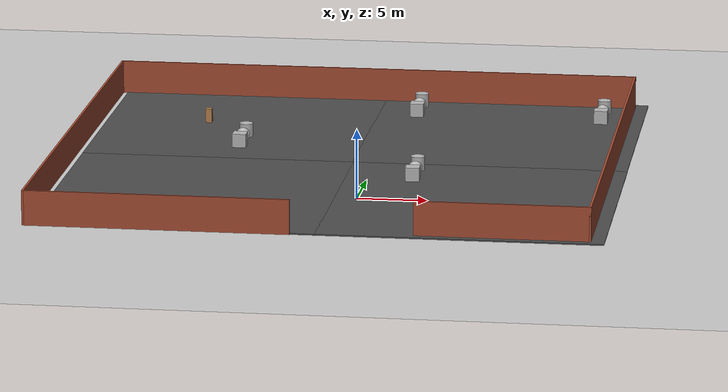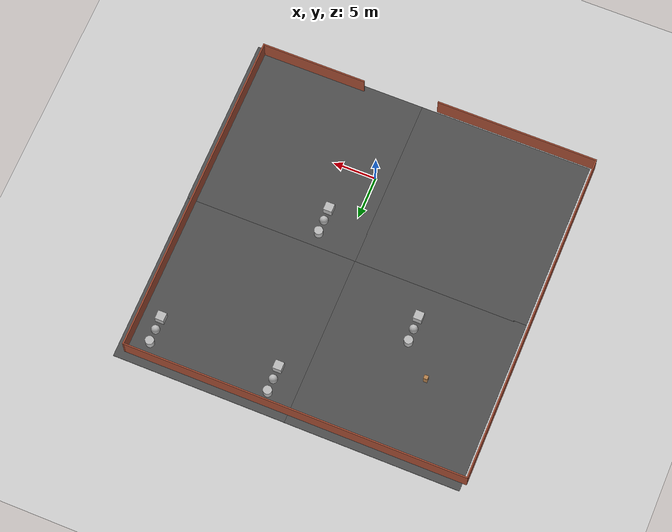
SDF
<sdf version="1.6">
 <world name="default">
  <light name="sun" type="directional">
   <pose>0 0 10 0 -0 0</pose>
   <diffuse>0.8 0.8 0.8 1</diffuse>
   <specular>0.1 0.1 0.1 1</specular>
   <attenuation>
    <range>1000</range>
    <constant>0.9</constant>
    <linear>0.01</linear>
    <quadratic>0.001</quadratic>
   </attenuation>
   <direction>-0.5 0.5 -1</direction>
  </light>
  <model name="ground_plane">
   <static>1</static>
   <link name="link">
    <collision name="collision">
     <geometry><plane><normal>0 0 1</normal><size>100 100</size></plane></geometry>
     <surface><friction><ode><mu>100</mu><mu2>50</mu2></ode></friction></surface>
    </collision>
    <visual name="visual">
     <cast_shadows>0</cast_shadows>
     <geometry><plane><normal>0 0 1</normal><size>100 100</size></plane></geometry>
     <material>
      <script><uri>file://media/materials/scripts/gazebo.material</uri><name>Gazebo/Grey</name></script>
     </material>
    </visual>
   </link>
  </model>
  <gravity>0 0 -9.8</gravity>
  <magnetic_field>6e-06 2.3e-05 -4.2e-05</magnetic_field>
  <atmosphere type="adiabatic"/>
  <physics name="default_physics" default="0" type="ode">
   <max_step_size>0.001</max_step_size>
   <real_time_factor>1</real_time_factor>
   <real_time_update_rate>1000</real_time_update_rate>
  </physics>
  <scene><ambient>0.4 0.4 0.4 1</ambient><background>0.7 0.7 0.7 1</background><shadows>1</shadows></scene>
  <spherical_coordinates>
   <surface_model>EARTH_WGS84</surface_model>
   <latitude_deg>0</latitude_deg>
   <longitude_deg>0</longitude_deg>
   <elevation>0</elevation>
   <heading_deg>0</heading_deg>
  </spherical_coordinates>
  <model name="asphalt_plane">
   <static>1</static>
   <link name="link">
    <collision name="collision"><geometry><box><size>20 20 0.1</size></box></geometry></collision>
    <visual name="visual">
     <cast_shadows>0</cast_shadows>
     <geometry><box><size>20 20 0.1</size></box></geometry>
     <material>
      <script>
       <uri>model://asphalt_plane/materials/scripts</uri>
       <uri>model://asphalt_plane/materials/textures</uri>
       <name>vrc/asphalt</name>
      </script>
     </material>
    </visual>
   </link>
   <pose>8.35936 -0.042258 0 0 -0 0</pose>
  </model>
  <model name="asphalt_plane_0">
   <static>1</static>
   <link name="link">
    <collision name="collision"><geometry><box><size>20 20 0.1</size></box></geometry></collision>
    <visual name="visual">
     <cast_shadows>0</cast_shadows>
     <geometry><box><size>20 20 0.1</size></box></geometry>
     <material>
      <script>
       <uri>model://asphalt_plane/materials/scripts</uri>
       <uri>model://asphalt_plane/materials/textures</uri>
       <name>vrc/asphalt</name>
      </script>
     </material>
    </visual>
   </link>
   <pose>-11.5951 -0.039077 0 0 -0 0</pose>
  </model>
  <model name="asphalt_plane_1">
   <static>1</static>
   <link name="link">
    <collision name="collision"><geometry><box><size>20 20 0.1</size></box></geometry></collision>
    <visual name="visual">
     <cast_shadows>0</cast_shadows>
     <geometry><box><size>20 20 0.1</size></box></geometry>
     <material>
      <script>
       <uri>model://asphalt_plane/materials/scripts</uri>
       <uri>model://asphalt_plane/materials/textures</uri>
       <name>vrc/asphalt</name>
      </script>
     </material>
    </visual>
   </link>
   <pose>-11.6039 19.8487 0 0 -0 0</pose>
  </model>
  <model name="asphalt_plane_1_clone">
   <static>1</static>
   <link name="link">
    <collision name="collision"><geometry><box><size>20 20 0.1</size></box></geometry></collision>
    <visual name="visual">
     <cast_shadows>0</cast_shadows>
     <geometry><box><size>20 20 0.1</size></box></geometry>
     <material>
      <script>
       <uri>model://asphalt_plane/materials/scripts</uri>
       <uri>model://asphalt_plane/materials/textures</uri>
       <name>vrc/asphalt</name>
      </script>
     </material>
    </visual>
   </link>
   <pose>8.33411 19.8392 0 0 -0 0</pose>
  </model>
  <model name="cabinet">
   <static>1</static>
   <link name="cabinet::cabinet_bottom_plate">
    <inertial>
     <pose>0 0 -1 0 -0 0</pose>
     <inertia><ixx>2.05</ixx><ixy>0</ixy><ixz>0</ixz><iyy>2.05</iyy><iyz>0</iyz><izz>2.05</izz></inertia>
     <mass>25</mass>
    </inertial>
    <collision name="cabinet_bottom_plate_geom">
     <pose>0 0 0.01 0 -0 0</pose>
     <geometry><box><size>0.45 0.45 0.02</size></box></geometry>
    </collision>
    <visual name="cabinet_bottom_plate_geom_visual">
     <pose>0 0 0.01 0 -0 0</pose>
     <geometry><box><size>0.45 0.45 0.02</size></box></geometry>
     <material>
      <script><uri>file://media/materials/scripts/gazebo.material</uri><name>Gazebo/Wood</name></script>
     </material>
    </visual>
    <collision name="cabinet_bottom_plate_geom_cabinet_back_plate">
     <pose>0.235 0 0.51 0 -0 0</pose>
     <geometry><box><size>0.02 0.45 1.02</size></box></geometry>
    </collision>
    <visual name="cabinet_bottom_plate_geom_cabinet_back_plate_visual">
     <pose>0.235 0 0.51 0 -0 0</pose>
     <geometry><box><size>0.02 0.45 1.02</size></box></geometry>
     <material>
      <script><uri>file://media/materials/scripts/gazebo.material</uri><name>Gazebo/Wood</name></script>
     </material>
    </visual>
    <collision name="cabinet_bottom_plate_geom_cabinet_left_plate">
     <pose>0 0.235 0.51 0 -0 0</pose>
     <geometry><box><size>0.45 0.02 1.02</size></box></geometry>
    </collision>
    <visual name="cabinet_bottom_plate_geom_cabinet_left_plate_visual">
     <pose>0 0.235 0.51 0 -0 0</pose>
     <geometry><box><size>0.45 0.02 1.02</size></box></geometry>
     <material>
      <script><uri>file://media/materials/scripts/gazebo.material</uri><name>Gazebo/Wood</name></script>
     </material>
    </visual>
    <collision name="cabinet_bottom_plate_geom_cabinet_middle_plate">
     <pose>0 0 0.51 0 -0 0</pose>
     <geometry><box><size>0.45 0.45 0.02</size></box></geometry>
    </collision>
    <visual name="cabinet_bottom_plate_geom_cabinet_middle_plate_visual">
     <pose>0 0 0.51 0 -0 0</pose>
     <geometry><box><size>0.45 0.45 0.02</size></box></geometry>
     <material>
      <script><uri>file://media/materials/scripts/gazebo.material</uri><name>Gazebo/Wood</name></script>
     </material>
    </visual>
    <collision name="cabinet_bottom_plate_geom_cabinet_right_plate">
     <pose>0 -0.235 0.51 0 -0 0</pose>
     <geometry><box><size>0.45 0.02 1.02</size></box></geometry>
    </collision>
    <visual name="cabinet_bottom_plate_geom_cabinet_right_plate_visual">
     <pose>0 -0.235 0.51 0 -0 0</pose>
     <geometry><box><size>0.45 0.02 1.02</size></box></geometry>
     <material>
      <script><uri>file://media/materials/scripts/gazebo.material</uri><name>Gazebo/Wood</name></script>
     </material>
    </visual>
    <collision name="cabinet_bottom_plate_geom_cabinet_top_plate">
     <pose>0 0 1.01 0 -0 0</pose>
     <geometry><box><size>0.45 0.45 0.02</size></box></geometry>
    </collision>
    <visual name="cabinet_bottom_plate_geom_cabinet_top_plate_visual">
     <pose>0 0 1.01 0 -0 0</pose>
     <geometry><box><size>0.45 0.45 0.02</size></box></geometry>
     <material>
      <script><uri>file://media/materials/scripts/gazebo.material</uri><name>Gazebo/Wood</name></script>
     </material>
    </visual>
   </link>
   <pose>-13.8221 19.8012 0.210999 0 -0 0</pose>
  </model>
  <model name="CATBOT_world">
   <pose>-2.32593 9.32088 0 0 -0 0</pose>
   <link name="Wall_3">
    <collision name="Wall_3_Collision">
     <geometry><box><size>12.25 0.15 2.5</size></box></geometry>
     <pose>0 0 1.25 0 -0 0</pose>
    </collision>
    <visual name="Wall_3_Visual">
     <pose>0 0 1.25 0 -0 0</pose>
     <geometry><box><size>12.25 0.15 2.5</size></box></geometry>
     <material>
      <script><uri>file://media/materials/scripts/gazebo.material</uri><name>Gazebo/Bricks</name></script>
      <ambient>1 1 1 1</ambient>
     </material>
    </visual>
    <pose>13.625 -18.8 0 0 -0 0</pose>
   </link>
   <link name="Wall_4">
    <collision name="Wall_4_Collision">
     <geometry><box><size>38.5 0.15 2.5</size></box></geometry>
     <pose>0 0 1.25 0 -0 0</pose>
    </collision>
    <visual name="Wall_4_Visual">
     <pose>0 0 1.25 0 -0 0</pose>
     <geometry><box><size>38.5 0.15 2.5</size></box></geometry>
     <material>
      <script><uri>file://media/materials/scripts/gazebo.material</uri><name>Gazebo/Bricks</name></script>
      <ambient>1 1 1 1</ambient>
     </material>
    </visual>
    <pose>19.675 0.375 0 0 -0 1.5708</pose>
   </link>
   <link name="Wall_5">
    <collision name="Wall_5_Collision">
     <geometry><box><size>39.5 0.15 2.5</size></box></geometry>
     <pose>0 0 1.25 0 -0 0</pose>
    </collision>
    <visual name="Wall_5_Visual">
     <pose>0 0 1.25 0 -0 0</pose>
     <geometry><box><size>39.5 0.15 2.5</size></box></geometry>
     <material>
      <script><uri>file://media/materials/scripts/gazebo.material</uri><name>Gazebo/Bricks</name></script>
      <ambient>1 1 1 1</ambient>
     </material>
    </visual>
    <pose>0 19.55 0 0 -0 3.14159</pose>
   </link>
   <link name="Wall_6">
    <collision name="Wall_6_Collision">
     <geometry><box><size>39.25 0.15 2.5</size></box></geometry>
     <pose>0 0 1.25 0 -0 0</pose>
    </collision>
    <visual name="Wall_6_Visual">
     <pose>0 0 1.25 0 -0 0</pose>
     <geometry><box><size>39.25 0.15 2.5</size></box></geometry>
     <material>
      <script><uri>file://media/materials/scripts/gazebo.material</uri><name>Gazebo/Bricks</name></script>
      <ambient>1 1 1 1</ambient>
     </material>
    </visual>
    <pose>-19.675 0 0 0 0 -1.5708</pose>
   </link>
   <link name="Wall_7">
    <collision name="Wall_7_Collision">
     <geometry><box><size>18.75 0.15 2.5</size></box></geometry>
     <pose>0 0 1.25 0 -0 0</pose>
    </collision>
    <visual name="Wall_7_Visual">
     <pose>0 0 1.25 0 -0 0</pose>
     <geometry><box><size>18.75 0.15 2.5</size></box></geometry>
     <material>
      <script><uri>file://media/materials/scripts/gazebo.material</uri><name>Gazebo/Bricks</name></script>
      <ambient>1 1 1 1</ambient>
     </material>
    </visual>
    <pose>-10.375 -19.55 0 0 -0 0</pose>
   </link>
   <static>1</static>
  </model>
  <model name="textured_shapes">
   <pose>-10.4945 15 0.55 0 -0 0</pose>
   <link name="box">
    <pose>0 -1.5 0 0 -0 0</pose>
    <collision name="collision"><geometry><box><size>1 1 1</size></box></geometry></collision>
    <visual name="visual">
     <geometry><box><size>1 1 1</size></box></geometry>
     <material>
      <script>
       <uri>model://textured_shapes/materials/scripts</uri>
       <uri>model://textured_shapes/materials/textures</uri>
       <name>TexturedShape/Squares</name>
      </script>
     </material>
    </visual>
    <inertial>
     <inertia><ixx>1</ixx><ixy>0</ixy><ixz>0</ixz><iyy>1</iyy><iyz>0</iyz><izz>1</izz></inertia>
     <mass>1</mass>
    </inertial>
   </link>
   <link name="sphere">
    <collision name="collision"><geometry><sphere><radius>0.5</radius></sphere></geometry></collision>
    <visual name="visual">
     <geometry><sphere><radius>0.5</radius></sphere></geometry>
     <material>
      <script>
       <uri>model://textured_shapes/materials/scripts</uri>
       <uri>model://textured_shapes/materials/textures</uri>
       <name>TexturedShape/Squares</name>
      </script>
     </material>
    </visual>
    <inertial>
     <inertia><ixx>1</ixx><ixy>0</ixy><ixz>0</ixz><iyy>1</iyy><iyz>0</iyz><izz>1</izz></inertia>
     <mass>1</mass>
    </inertial>
   </link>
   <link name="cylinder">
    <pose>0 1.5 0 0 -0 0</pose>
    <collision name="collision">
     <geometry><cylinder><radius>0.5</radius><length>1</length></cylinder></geometry>
    </collision>
    <visual name="visual">
     <geometry><cylinder><radius>0.5</radius><length>1</length></cylinder></geometry>
     <material>
      <script>
       <uri>model://textured_shapes/materials/scripts</uri>
       <uri>model://textured_shapes/materials/textures</uri>
       <name>TexturedShape/Squares</name>
      </script>
     </material>
    </visual>
    <inertial>
     <inertia><ixx>1</ixx><ixy>0</ixy><ixz>0</ixz><iyy>1</iyy><iyz>0</iyz><izz>1</izz></inertia>
     <mass>1</mass>
    </inertial>
   </link>
  </model>
  <model name="textured_shapes_0">
   <pose>3.30049 6.94315 0.55 0 -0 0</pose>
   <link name="box">
    <pose>0 -1.5 0 0 -0 0</pose>
    <collision name="collision"><geometry><box><size>1 1 1</size></box></geometry></collision>
    <visual name="visual">
     <geometry><box><size>1 1 1</size></box></geometry>
     <material>
      <script>
       <uri>model://textured_shapes/materials/scripts</uri>
       <uri>model://textured_shapes/materials/textures</uri>
       <name>TexturedShape/Squares</name>
      </script>
     </material>
    </visual>
    <inertial>
     <inertia><ixx>1</ixx><ixy>0</ixy><ixz>0</ixz><iyy>1</iyy><iyz>0</iyz><izz>1</izz></inertia>
     <mass>1</mass>
    </inertial>
   </link>
   <link name="sphere">
    <collision name="collision"><geometry><sphere><radius>0.5</radius></sphere></geometry></collision>
    <visual name="visual">
     <geometry><sphere><radius>0.5</radius></sphere></geometry>
     <material>
      <script>
       <uri>model://textured_shapes/materials/scripts</uri>
       <uri>model://textured_shapes/materials/textures</uri>
       <name>TexturedShape/Squares</name>
      </script>
     </material>
    </visual>
    <inertial>
     <inertia><ixx>1</ixx><ixy>0</ixy><ixz>0</ixz><iyy>1</iyy><iyz>0</iyz><izz>1</izz></inertia>
     <mass>1</mass>
    </inertial>
   </link>
   <link name="cylinder">
    <pose>0 1.5 0 0 -0 0</pose>
    <collision name="collision">
     <geometry><cylinder><radius>0.5</radius><length>1</length></cylinder></geometry>
    </collision>
    <visual name="visual">
     <geometry><cylinder><radius>0.5</radius><length>1</length></cylinder></geometry>
     <material>
      <script>
       <uri>model://textured_shapes/materials/scripts</uri>
       <uri>model://textured_shapes/materials/textures</uri>
       <name>TexturedShape/Squares</name>
      </script>
     </material>
    </visual>
    <inertial>
     <inertia><ixx>1</ixx><ixy>0</ixy><ixz>0</ixz><iyy>1</iyy><iyz>0</iyz><izz>1</izz></inertia>
     <mass>1</mass>
    </inertial>
   </link>
  </model>
  <model name="textured_shapes_2">
   <pose>15.2217 25.5506 0.55 0 -0 0</pose>
   <link name="box">
    <pose>0 -1.5 0 0 -0 0</pose>
    <collision name="collision"><geometry><box><size>1 1 1</size></box></geometry></collision>
    <visual name="visual">
     <geometry><box><size>1 1 1</size></box></geometry>
     <material>
      <script>
       <uri>model://textured_shapes/materials/scripts</uri>
       <uri>model://textured_shapes/materials/textures</uri>
       <name>TexturedShape/Squares</name>
      </script>
     </material>
    </visual>
    <inertial>
     <inertia><ixx>1</ixx><ixy>0</ixy><ixz>0</ixz><iyy>1</iyy><iyz>0</iyz><izz>1</izz></inertia>
     <mass>1</mass>
    </inertial>
   </link>
   <link name="sphere">
    <collision name="collision"><geometry><sphere><radius>0.5</radius></sphere></geometry></collision>
    <visual name="visual">
     <geometry><sphere><radius>0.5</radius></sphere></geometry>
     <material>
      <script>
       <uri>model://textured_shapes/materials/scripts</uri>
       <uri>model://textured_shapes/materials/textures</uri>
       <name>TexturedShape/Squares</name>
      </script>
     </material>
    </visual>
    <inertial>
     <inertia><ixx>1</ixx><ixy>0</ixy><ixz>0</ixz><iyy>1</iyy><iyz>0</iyz><izz>1</izz></inertia>
     <mass>1</mass>
    </inertial>
   </link>
   <link name="cylinder">
    <pose>0 1.5 0 0 -0 0</pose>
    <collision name="collision">
     <geometry><cylinder><radius>0.5</radius><length>1</length></cylinder></geometry>
    </collision>
    <visual name="visual">
     <geometry><cylinder><radius>0.5</radius><length>1</length></cylinder></geometry>
     <material>
      <script>
       <uri>model://textured_shapes/materials/scripts</uri>
       <uri>model://textured_shapes/materials/textures</uri>
       <name>TexturedShape/Squares</name>
      </script>
     </material>
    </visual>
    <inertial>
     <inertia><ixx>1</ixx><ixy>0</ixy><ixz>0</ixz><iyy>1</iyy><iyz>0</iyz><izz>1</izz></inertia>
     <mass>1</mass>
    </inertial>
   </link>
  </model>
  <model name="textured_shapes_3">
   <pose>1.30909 25.9389 0.55 0 -0 0</pose>
   <link name="box">
    <pose>0 -1.5 0 0 -0 0</pose>
    <collision name="collision"><geometry><box><size>1 1 1</size></box></geometry></collision>
    <visual name="visual">
     <geometry><box><size>1 1 1</size></box></geometry>
     <material>
      <script>
       <uri>model://textured_shapes/materials/scripts</uri>
       <uri>model://textured_shapes/materials/textures</uri>
       <name>TexturedShape/Squares</name>
      </script>
     </material>
    </visual>
    <inertial>
     <inertia><ixx>1</ixx><ixy>0</ixy><ixz>0</ixz><iyy>1</iyy><iyz>0</iyz><izz>1</izz></inertia>
     <mass>1</mass>
    </inertial>
   </link>
   <link name="sphere">
    <collision name="collision"><geometry><sphere><radius>0.5</radius></sphere></geometry></collision>
    <visual name="visual">
     <geometry><sphere><radius>0.5</radius></sphere></geometry>
     <material>
      <script>
       <uri>model://textured_shapes/materials/scripts</uri>
       <uri>model://textured_shapes/materials/textures</uri>
       <name>TexturedShape/Squares</name>
      </script>
     </material>
    </visual>
    <inertial>
     <inertia><ixx>1</ixx><ixy>0</ixy><ixz>0</ixz><iyy>1</iyy><iyz>0</iyz><izz>1</izz></inertia>
     <mass>1</mass>
    </inertial>
   </link>
   <link name="cylinder">
    <pose>0 1.5 0 0 -0 0</pose>
    <collision name="collision">
     <geometry><cylinder><radius>0.5</radius><length>1</length></cylinder></geometry>
    </collision>
    <visual name="visual">
     <geometry><cylinder><radius>0.5</radius><length>1</length></cylinder></geometry>
     <material>
      <script>
       <uri>model://textured_shapes/materials/scripts</uri>
       <uri>model://textured_shapes/materials/textures</uri>
       <name>TexturedShape/Squares</name>
      </script>
     </material>
    </visual>
    <inertial>
     <inertia><ixx>1</ixx><ixy>0</ixy><ixz>0</ixz><iyy>1</iyy><iyz>0</iyz><izz>1</izz></inertia>
     <mass>1</mass>
    </inertial>
   </link>
  </model>
 </world>
</sdf>
